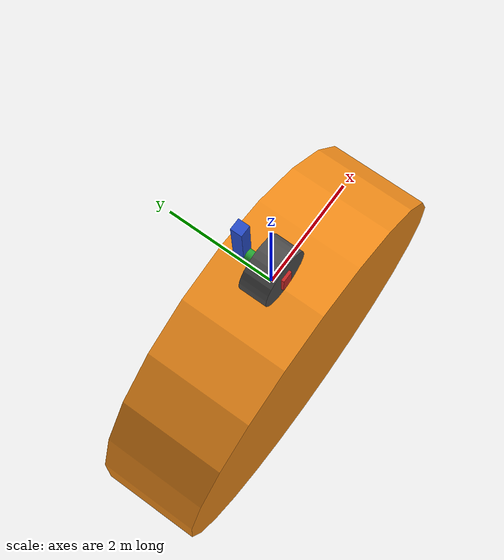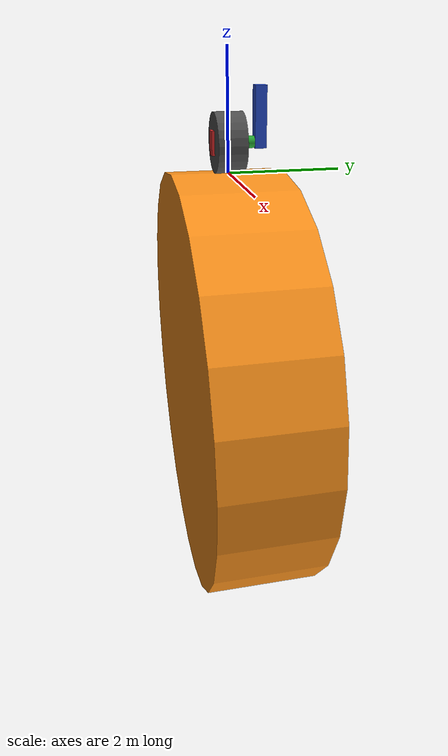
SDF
<?xml version="1.0" ?>
<sdf version="1.5">
  <world name="default">

    <include>
      <uri>model://sun</uri>
    </include>

    <model name="tire_rig">
      <pose>0 0 0.5 0 0 0</pose>

      <link name="wheel">
        <inertial>
          <mass>2.5</mass>
          <inertia>
            <ixx>0.208333</ixx>
            <ixy>0</ixy>
            <ixz>0</ixz>
            <iyy>0.208333</iyy>
            <iyz>0</iyz>
            <izz>0.3125</izz>
          </inertia>
        </inertial>
        <pose>0 0 0 1.57 0 0</pose>
        <collision name="collision">
          <geometry>
            <cylinder>
              <radius>0.5</radius>
              <length>0.5</length>
            </cylinder>
          </geometry>
        </collision>

        <visual name="visual_indicator">
          <pose>0 0 0.2 0 0 0</pose>
          <geometry>
            <box>
              <size>0.2 0.4 0.2</size>
            </box>
          </geometry>
          <material>
            <script><name>Gazebo/Red</name></script>
          </material>
        </visual>

        <visual name="visual">
          <geometry>
            <cylinder>
              <radius>0.5</radius>
              <length>0.5</length>
            </cylinder>
          </geometry>
          <material>
            <script><name>Gazebo/DarkGrey</name></script>
          </material>
        </visual>
      </link>

      <link name="axel">
        <pose>0 0.35 0 1.57 0 0</pose>

        <inertial>
          <mass>0.5</mass>
          <inertia>
            <ixx>0.0029166</ixx>
            <ixy>0</ixy>
            <ixz>0</ixz>
            <iyy>0.0029166</iyy>
            <iyz>0</iyz>
            <izz>0.0025</izz>
          </inertia>
        </inertial>

        <collision name="collision">
          <geometry>
            <cylinder>
              <radius>0.1</radius>
              <length>0.2</length>
            </cylinder>
          </geometry>
        </collision>

        <visual name="visual">
          <geometry>
            <cylinder>
              <radius>0.1</radius>
              <length>0.2</length>
            </cylinder>
          </geometry>
          <material>
            <script>
              <name>Gazebo/Green</name>
            </script>
          </material>
        </visual>
      </link>

      <link name="upright">
        <pose>0 0.55 0.4 0 0 0</pose>

        <inertial>
          <mass>1.0</mass>
          <inertia>
            <ixx>0.08667</ixx>
            <ixy>0</ixy>
            <ixz>0</ixz>
            <iyy>0.08667</iyy>
            <iyz>0</iyz>
            <izz>0.0066667</izz>
          </inertia>
        </inertial>

        <collision name="collision">
          <geometry>
            <box>
              <size>0.2 0.2 1</size>
            </box>
          </geometry>
        </collision>
        <visual name="visual">
          <geometry>
            <box>
              <size>0.2 0.2 1</size>
            </box>
          </geometry>
          <material>
            <script>
              <name>Gazebo/Blue</name>
            </script>
          </material>
        </visual>
      </link>

      <joint type="revolute" name="axel_wheel">
        <parent>axel</parent>
        <child>wheel</child>
        <axis>
          <xyz>0 0 1</xyz>
        </axis>

        <sensor name="force_torque" type="force_torque">
          <always_on>true</always_on>
          <visualize>true</visualize>
          <update_rate>30</update_rate>
        </sensor>
      </joint>

      <joint type="revolute" name="upright_axel">
        <parent>upright</parent>
        <child>axel</child>
        <axis>
          <xyz>1 0 0</xyz>
          <limit>
            <upper>0.75</upper>
            <lower>-0.75</lower>
          </limit>
        </axis>
      </joint>

      <joint type="revolute" name="world_upright">
        <parent>world</parent>
        <child>upright</child>
        <axis>
          <xyz>0 0 1</xyz>
          <limit>
            <upper>1.5707</upper>
            <lower>-1.5707</lower>
          </limit>
        </axis>
      </joint>

      <plugin name="tire_friction" filename="libTireFrictionPlugin.so">
        <link_name>wheel</link_name>
        <collision_name>collision</collision_name>
      </plugin>
    </model>

    <model name="treadmill_drums">
      <pose>0 0 -4.0 1.57079632679 0 0</pose>

      <link name="drum">
        <inertial>
          <mass>10</mass>
          <inertia>
            <ixx>43.3333</ixx>
            <ixy>0</ixy>
            <ixz>0</ixz>
            <iyy>43.3333</iyy>
            <iyz>0</iyz>
            <izz>80.0</izz>
          </inertia>
        </inertial>

        <collision name="collision">
          <geometry>
            <cylinder>
              <radius>4</radius>
              <length>2</length>
            </cylinder>
          </geometry>
        </collision>
        <visual name="visual">
          <geometry>
            <cylinder>
              <radius>4</radius>
              <length>2</length>
            </cylinder>
          </geometry>
          <material>
            <script>
              <name>Gazebo/Orange</name>
            </script>
          </material>
        </visual>
      </link>

      <joint type="revolute" name="drum_joint0">
        <parent>world</parent>
        <child>drum</child>
        <axis>
          <xyz>0 0 1</xyz>
        </axis>
      </joint>
    </model>

  </world>
</sdf>
